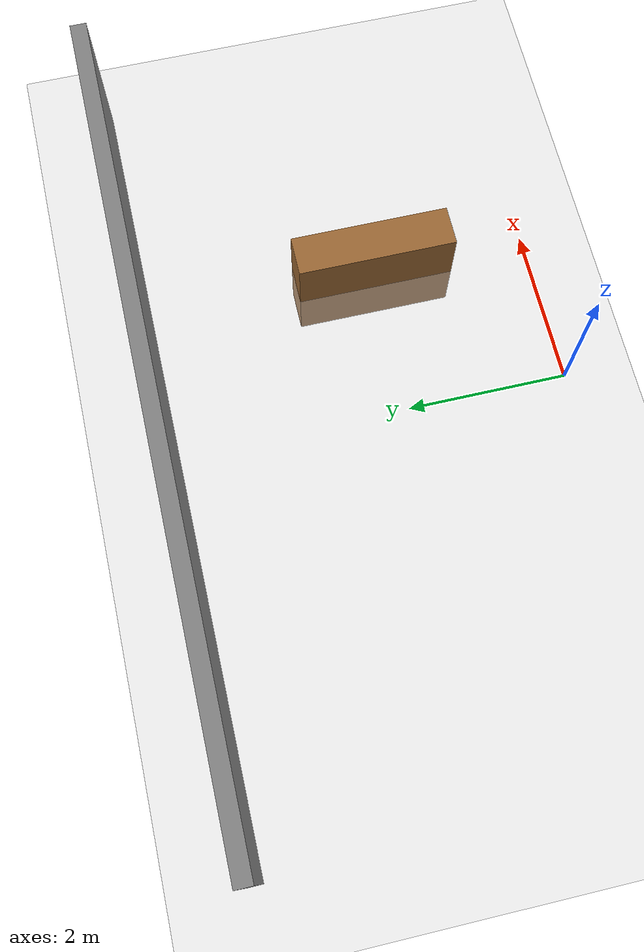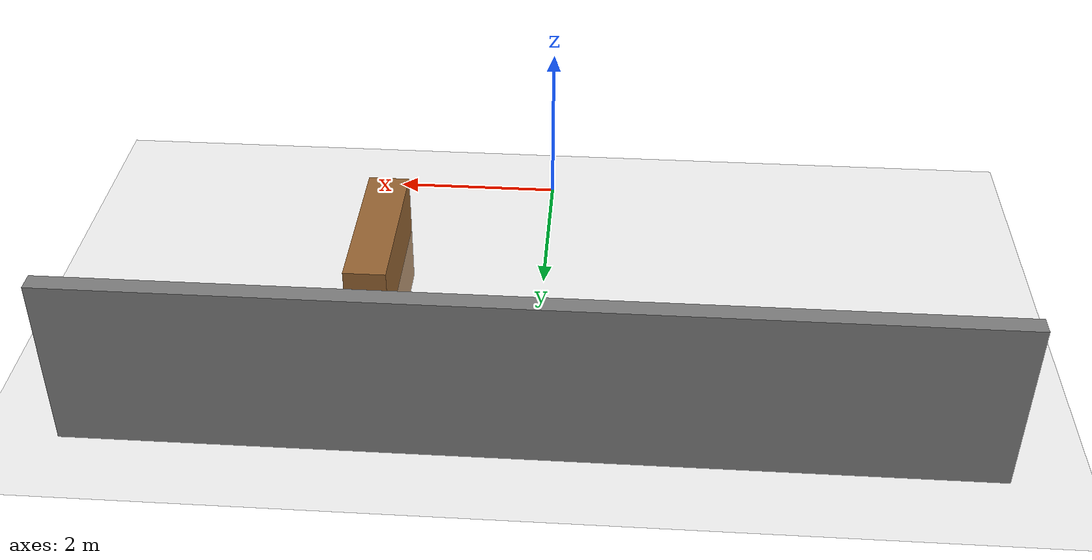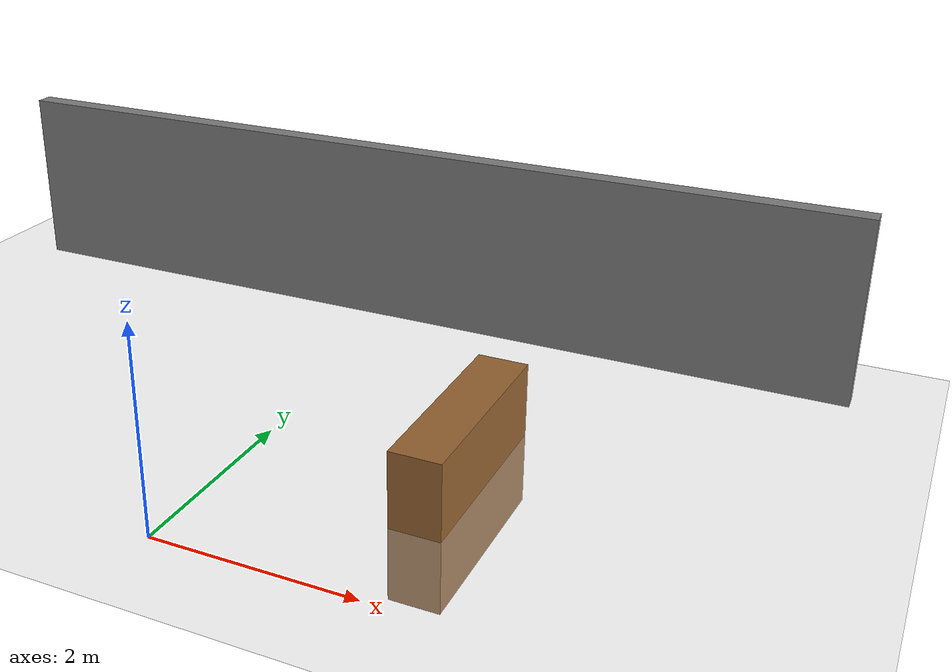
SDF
<?xml version="1.0" ?>
<sdf version="1.8">
  <world name="test_place">
    <physics name="1ms" type="ignored">
      <max_step_size>0.001</max_step_size>
      <real_time_factor>1.0</real_time_factor>
    </physics>

    <!-- Các Plugin hệ thống của Ignition Gazebo -->
    <plugin filename="libignition-gazebo-physics-system.so" name="ignition::gazebo::systems::Physics"></plugin>
    <plugin filename="libignition-gazebo-user-commands-system.so" name="ignition::gazebo::systems::UserCommands"></plugin>
    <plugin filename="libignition-gazebo-scene-broadcaster-system.so" name="ignition::gazebo::systems::SceneBroadcaster"></plugin>
    <plugin filename="libignition-gazebo-sensors-system.so" name="ignition::gazebo::systems::Sensors">
      <render_engine>ogre2</render_engine>
    </plugin>
    <plugin filename="libignition-gazebo-imu-system.so" name="ignition::gazebo::systems::Imu"></plugin>

    <!-- Ánh sáng mặt trời -->
    <light type="directional" name="sun">
      <cast_shadows>true</cast_shadows>
      <pose>0 0 10 0 0 0</pose>
      <diffuse>0.8 0.8 0.8 1</diffuse>
      <specular>0.2 0.2 0.2 1</specular>
      <attenuation>
        <range>1000</range>
        <constant>0.9</constant>
        <linear>0.01</linear>
        <quadratic>0.001</quadratic>
      </attenuation>
      <direction>-0.5 0.1 -0.9</direction>
    </light>

    <!-- Mặt sàn -->
    <model name="ground_plane">
      <static>true</static>
      <link name="link">
        <collision name="collision">
          <geometry>
            <plane>
              <normal>0 0 1</normal>
              <size>100 100</size>
            </plane>
          </geometry>
        </collision>
        <visual name="visual">
          <geometry>
            <plane>
              <normal>0 0 1</normal>
              <size>100 100</size>
            </plane>
          </geometry>
          <material>
            <ambient>0.8 0.8 0.8 1</ambient>
            <diffuse>0.8 0.8 0.8 1</diffuse>
            <specular>0.8 0.8 0.8 1</specular>
          </material>
        </visual>
      </link>
    </model>

    <!-- HỆ THỐNG TƯỜNG (Ghép từ warehouse) -->
    <model name="warehouse_walls">
      <static>true</static>
      <!-- North wall -->
      <link name="north_wall">
        <pose>0 5 1 0 0 0</pose>
        <visual name="visual">
          <geometry>
            <box><size>10 0.2 2</size></box>
          </geometry>
          <material>
            <ambient>0.5 0.5 0.5 1</ambient>
            <diffuse>0.5 0.5 0.5 1</diffuse>
          </material>
        </visual>
        <collision name="collision">
          <geometry>
            <box><size>10 0.2 2</size></box>
          </geometry>
        </collision>
      </link>
    </model>

    <!-- KỆ ĐỂ ĐỒ (Ghép từ warehouse) -->
    <model name="shelf_1">
      <static>true</static>
      <pose>2 2 0 0 0 0</pose>
      <link name="shelf">
        <visual name="visual">
          <geometry>
            <box><size>0.5 2.0 1.5</size></box>
          </geometry>
          <material>
            <ambient>0.6 0.4 0.2 1</ambient>
            <diffuse>0.6 0.4 0.2 1</diffuse>
          </material>
        </visual>
        <collision name="collision">
          <geometry>
            <box><size>0.5 2.0 1.5</size></box>
          </geometry>
        </collision>
      </link>
    </model>

  </world>
</sdf>
